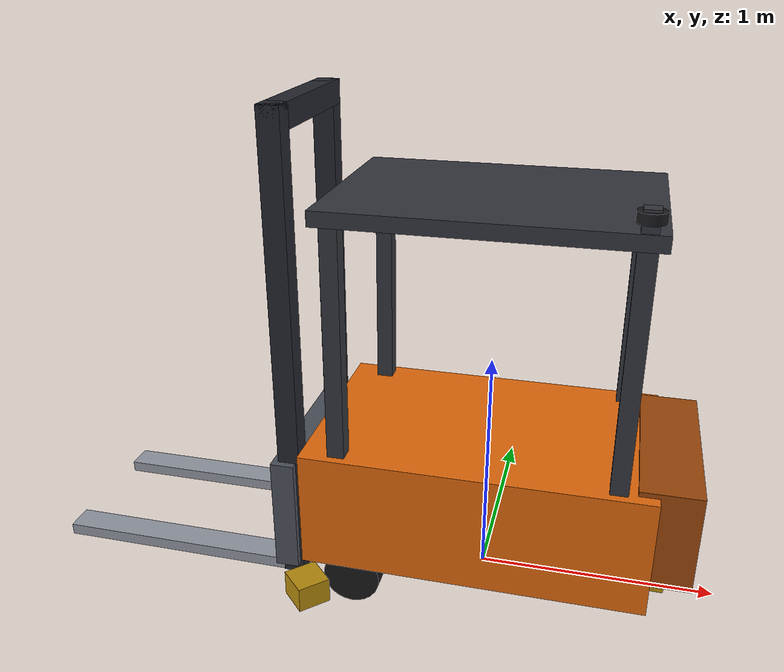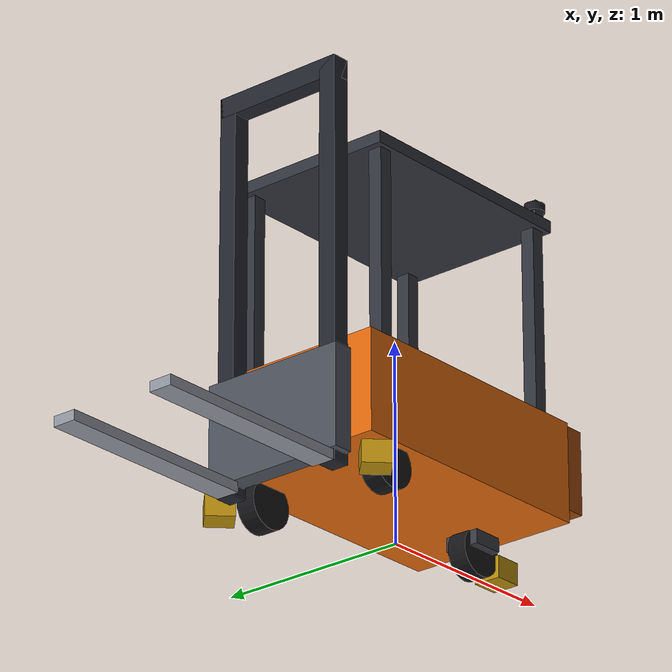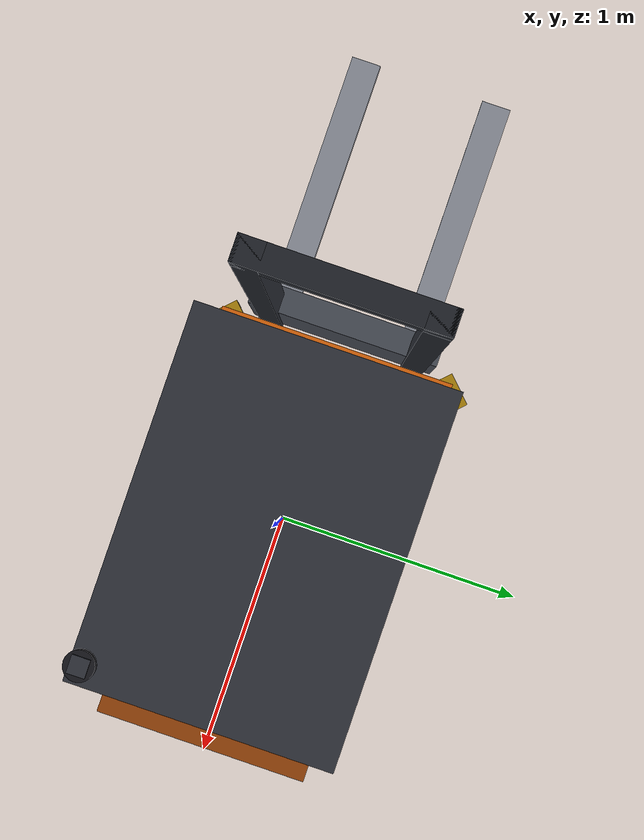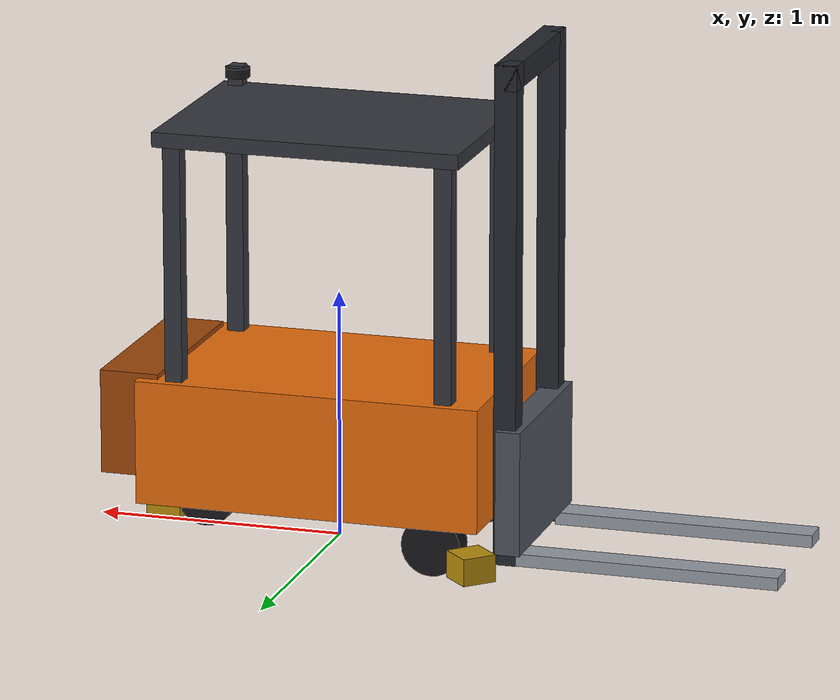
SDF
<?xml version="1.0" ?>
<sdf version="1.8">
  <model name="Forklift">
    <static>false</static>
    <self_collide>false</self_collide>

    <!-- ========================= Chassis ========================= -->
    <link name="base_link">
      <inertial>
        <pose>0.10 0 0.55 0 0 0</pose>
        <mass>900.0</mass>
        <inertia>
          <ixx>277.5</ixx><ixy>0</ixy><ixz>0</ixz>
          <iyy>363.75</iyy><iyz>0</iyz><izz>207.75</izz>
        </inertia>
      </inertial>

      <collision name="chassis_collision">
        <pose>0 0 0.45 0 0 0</pose>
        <geometry><box><size>1.40 0.90 0.50</size></box></geometry>
        <surface>
          <friction><ode><mu>0.6</mu><mu2>0.6</mu2></ode></friction>
        </surface>
      </collision>
      <visual name="chassis_visual">
        <pose>0 0 0.45 0 0 0</pose>
        <geometry><box><size>1.40 0.90 0.50</size></box></geometry>
        <material>
          <ambient>0.90 0.42 0.05 1</ambient>
          <diffuse>0.90 0.42 0.05 1</diffuse>
        </material>
      </visual>

      <!-- Counterweight, over the drive wheel and opposite the load. -->
      <collision name="counterweight_collision">
        <pose>0.74 0 0.51 0 0 0</pose>
        <geometry><box><size>0.24 0.80 0.42</size></box></geometry>
      </collision>
      <visual name="counterweight_visual">
        <pose>0.74 0 0.51 0 0 0</pose>
        <geometry><box><size>0.24 0.80 0.42</size></box></geometry>
        <material>
          <ambient>0.62 0.28 0.04 1</ambient>
          <diffuse>0.62 0.28 0.04 1</diffuse>
        </material>
      </visual>

      <!-- Overhead guard: four posts and a roof plate, visual only. -->
      <visual name="guard_post_fl">
        <pose>0.55 0.38 1.175 0 0 0</pose>
        <geometry><box><size>0.07 0.07 0.95</size></box></geometry>
        <material><ambient>0.20 0.21 0.24 1</ambient><diffuse>0.20 0.21 0.24 1</diffuse></material>
      </visual>
      <visual name="guard_post_fr">
        <pose>0.55 -0.38 1.175 0 0 0</pose>
        <geometry><box><size>0.07 0.07 0.95</size></box></geometry>
        <material><ambient>0.20 0.21 0.24 1</ambient><diffuse>0.20 0.21 0.24 1</diffuse></material>
      </visual>
      <visual name="guard_post_rl">
        <pose>-0.55 0.38 1.175 0 0 0</pose>
        <geometry><box><size>0.07 0.07 0.95</size></box></geometry>
        <material><ambient>0.20 0.21 0.24 1</ambient><diffuse>0.20 0.21 0.24 1</diffuse></material>
      </visual>
      <visual name="guard_post_rr">
        <pose>-0.55 -0.38 1.175 0 0 0</pose>
        <geometry><box><size>0.07 0.07 0.95</size></box></geometry>
        <material><ambient>0.20 0.21 0.24 1</ambient><diffuse>0.20 0.21 0.24 1</diffuse></material>
      </visual>
      <visual name="guard_roof">
        <pose>0 0 1.68 0 0 0</pose>
        <geometry><box><size>1.24 0.88 0.06</size></box></geometry>
        <material><ambient>0.20 0.21 0.24 1</ambient><diffuse>0.20 0.21 0.24 1</diffuse></material>
      </visual>

    </link>

    <!-- ======================== Sensing ========================= -->

    <link name="safety_scanner_back_link">
      <pose>0.72 0 0.15 0 0 0</pose>
      <inertial>
        <mass>1.4</mass>
        <inertia>
          <ixx>0.004</ixx><ixy>0</ixy><ixz>0</ixz>
          <iyy>0.004</iyy><iyz>0</iyz><izz>0.004</izz>
        </inertia>
      </inertial>
      <!-- Housing top face sits 20 mm BELOW the scan plane, so the scanner
           cannot see its own mounting. Visual only. -->
      <visual name="housing">
        <pose>0 0 -0.075 0 0 0</pose>
        <geometry><box><size>0.14 0.14 0.11</size></box></geometry>
        <material><ambient>0.72 0.55 0.05 1</ambient><diffuse>0.72 0.55 0.05 1</diffuse></material>
      </visual>
      <sensor name="safety_scanner_back" type="gpu_lidar">
        <pose>0 0 0 0 0 0</pose>
        <gz_frame_id>safety_scanner_back_link</gz_frame_id>
        <always_on>1</always_on>
        <update_rate>10</update_rate>
        <visualize>true</visualize>
        <topic>/forklift/gz/safety_scanner_back/measurement</topic>
        <lidar>
          <scan>
            <horizontal>
              <samples>275</samples>
              <resolution>1</resolution>
              <min_angle>-2.3998277</min_angle>
              <max_angle>2.3998277</max_angle>
            </horizontal>
            <vertical>
              <samples>1</samples>
              <resolution>1</resolution>
              <min_angle>0.0</min_angle>
              <max_angle>0.0</max_angle>
            </vertical>
          </scan>
          <range>
            <min>0.10</min>
            <max>8.0</max>
            <resolution>0.01</resolution>
          </range>
        </lidar>
      </sensor>
    </link>

    <link name="safety_scanner_left_link">
      <pose>-0.68 -0.46 0.15 0 0 -2.3561945</pose>
      <inertial>
        <mass>1.4</mass>
        <inertia>
          <ixx>0.004</ixx><ixy>0</ixy><ixz>0</ixz>
          <iyy>0.004</iyy><iyz>0</iyz><izz>0.004</izz>
        </inertia>
      </inertial>
      <!-- Housing top face sits 20 mm BELOW the scan plane, so the scanner
           cannot see its own mounting. Visual only. -->
      <visual name="housing">
        <pose>0 0 -0.075 0 0 0</pose>
        <geometry><box><size>0.14 0.14 0.11</size></box></geometry>
        <material><ambient>0.72 0.55 0.05 1</ambient><diffuse>0.72 0.55 0.05 1</diffuse></material>
      </visual>
      <sensor name="safety_scanner_left" type="gpu_lidar">
        <pose>0 0 0 0 0 0</pose>
        <gz_frame_id>safety_scanner_left_link</gz_frame_id>
        <always_on>1</always_on>
        <update_rate>10</update_rate>
        <visualize>true</visualize>
        <topic>/forklift/gz/safety_scanner_left/measurement</topic>
        <lidar>
          <scan>
            <horizontal>
              <samples>275</samples>
              <resolution>1</resolution>
              <min_angle>-2.3998277</min_angle>
              <max_angle>2.3998277</max_angle>
            </horizontal>
            <vertical>
              <samples>1</samples>
              <resolution>1</resolution>
              <min_angle>0.0</min_angle>
              <max_angle>0.0</max_angle>
            </vertical>
          </scan>
          <range>
            <min>0.10</min>
            <max>8.0</max>
            <resolution>0.01</resolution>
          </range>
        </lidar>
      </sensor>
    </link>

    <link name="safety_scanner_right_link">
      <pose>-0.68 0.46 0.15 0 0 2.3561945</pose>
      <inertial>
        <mass>1.4</mass>
        <inertia>
          <ixx>0.004</ixx><ixy>0</ixy><ixz>0</ixz>
          <iyy>0.004</iyy><iyz>0</iyz><izz>0.004</izz>
        </inertia>
      </inertial>
      <!-- Housing top face sits 20 mm BELOW the scan plane, so the scanner
           cannot see its own mounting. Visual only. -->
      <visual name="housing">
        <pose>0 0 -0.075 0 0 0</pose>
        <geometry><box><size>0.14 0.14 0.11</size></box></geometry>
        <material><ambient>0.72 0.55 0.05 1</ambient><diffuse>0.72 0.55 0.05 1</diffuse></material>
      </visual>
      <sensor name="safety_scanner_right" type="gpu_lidar">
        <pose>0 0 0 0 0 0</pose>
        <gz_frame_id>safety_scanner_right_link</gz_frame_id>
        <always_on>1</always_on>
        <update_rate>10</update_rate>
        <visualize>true</visualize>
        <topic>/forklift/gz/safety_scanner_right/measurement</topic>
        <lidar>
          <scan>
            <horizontal>
              <samples>275</samples>
              <resolution>1</resolution>
              <min_angle>-2.3998277</min_angle>
              <max_angle>2.3998277</max_angle>
            </horizontal>
            <vertical>
              <samples>1</samples>
              <resolution>1</resolution>
              <min_angle>0.0</min_angle>
              <max_angle>0.0</max_angle>
            </vertical>
          </scan>
          <range>
            <min>0.10</min>
            <max>8.0</max>
            <resolution>0.01</resolution>
          </range>
        </lidar>
      </sensor>
    </link>

    <link name="nav_lidar_link">
      <pose>0.55 -0.40 1.80 0 0 0</pose>
      <inertial>
        <mass>1.0</mass>
        <inertia>
          <ixx>0.002</ixx><ixy>0</ixy><ixz>0</ixz>
          <iyy>0.002</iyy><iyz>0</iyz><izz>0.002</izz>
        </inertia>
      </inertial>
      <!-- Post and head both finish BELOW the scan plane, as the three
           safety scanner housings do, so no sensor renders its own
           mounting. -->
      <visual name="post">
        <pose>0 0 -0.065 0 0 0</pose>
        <geometry><box><size>0.06 0.06 0.11</size></box></geometry>
        <material><ambient>0.20 0.21 0.24 1</ambient><diffuse>0.20 0.21 0.24 1</diffuse></material>
      </visual>
      <visual name="head">
        <pose>0 0 -0.040 0 0 0</pose>
        <geometry><cylinder><radius>0.05</radius><length>0.04</length></cylinder></geometry>
        <material><ambient>0.10 0.10 0.12 1</ambient><diffuse>0.10 0.10 0.12 1</diffuse></material>
      </visual>
      <sensor name="nav_lidar" type="gpu_lidar">
        <pose>0 0 0 0 0 0</pose>
        <gz_frame_id>nav_lidar_link</gz_frame_id>
        <always_on>1</always_on>
        <update_rate>10</update_rate>
        <visualize>true</visualize>
        <topic>/forklift/gz/scan_nav</topic>
        <lidar>
          <scan>
            <horizontal>
              <samples>360</samples>
              <resolution>1</resolution>
              <min_angle>-3.1415927</min_angle>
              <max_angle>3.1415927</max_angle>
            </horizontal>
            <vertical>
              <samples>1</samples>
              <resolution>1</resolution>
              <min_angle>0.0</min_angle>
              <max_angle>0.0</max_angle>
            </vertical>
          </scan>
          <range>
            <min>0.10</min>
            <max>8.0</max>
            <resolution>0.01</resolution>
          </range>
        </lidar>
      </sensor>
    </link>

    <!-- =========================== IMU =========================== -->
    <link name="imu_link">
      <pose>-0.50 0 0.25 0 0 0</pose>
      <inertial>
        <mass>0.05</mass>
        <inertia>
          <ixx>1e-5</ixx><ixy>0</ixy><ixz>0</ixz>
          <iyy>1e-5</iyy><iyz>0</iyz><izz>1e-5</izz>
        </inertia>
      </inertial>
      <sensor name="imu" type="imu">
        <pose>0 0 0 0 0 0</pose>
        <gz_frame_id>imu_link</gz_frame_id>
        <always_on>1</always_on>
        <update_rate>100</update_rate>
        <topic>/forklift/gz/imu</topic>
        <imu>
          <enable_orientation>false</enable_orientation>
          <angular_velocity>
            <x>
              <noise type="gaussian">
                <mean>0.0</mean>
                <stddev>0.001745</stddev>
                <bias_mean>0.002618</bias_mean>
                <bias_stddev>0.0</bias_stddev>
              </noise>
            </x>
            <y>
              <noise type="gaussian">
                <mean>0.0</mean>
                <stddev>0.001745</stddev>
                <bias_mean>0.002618</bias_mean>
                <bias_stddev>0.0</bias_stddev>
              </noise>
            </y>
            <z>
              <noise type="gaussian">
                <mean>0.0</mean>
                <stddev>0.001745</stddev>
                <bias_mean>0.002618</bias_mean>
                <bias_stddev>0.0</bias_stddev>
              </noise>
            </z>
          </angular_velocity>
          <linear_acceleration>
            <x>
              <noise type="gaussian">
                <mean>0.0</mean>
                <stddev>0.01076</stddev>
                <bias_mean>0.01961</bias_mean>
                <bias_stddev>0.0</bias_stddev>
              </noise>
            </x>
            <y>
              <noise type="gaussian">
                <mean>0.0</mean>
                <stddev>0.01076</stddev>
                <bias_mean>0.01961</bias_mean>
                <bias_stddev>0.0</bias_stddev>
              </noise>
            </y>
            <z>
              <noise type="gaussian">
                <mean>0.0</mean>
                <stddev>0.01278</stddev>
                <bias_mean>0.01961</bias_mean>
                <bias_stddev>0.0</bias_stddev>
              </noise>
            </z>
          </linear_acceleration>
        </imu>
      </sensor>
    </link>

    <!-- ========================== Mast ========================== -->
    <!-- Fixed structure. The carriage slides on it, see mast_joint. -->
    <link name="mast">
      <inertial>
        <pose>-0.78 0 1.05 0 0 0</pose>
        <mass>120.0</mass>
        <inertia>
          <ixx>45.63</ixx><ixy>0</ixy><ixz>0</ixz>
          <iyy>40.40</iyy><iyz>0</iyz><izz>6.03</izz>
        </inertia>
      </inertial>
      <collision name="mast_collision">
        <pose>-0.78 0 1.05 0 0 0</pose>
        <geometry><box><size>0.10 0.72 2.00</size></box></geometry>
      </collision>
      <visual name="mast_rail_left">
        <pose>-0.78 0.30 1.05 0 0 0</pose>
        <geometry><box><size>0.09 0.09 2.00</size></box></geometry>
        <material><ambient>0.14 0.15 0.18 1</ambient><diffuse>0.14 0.15 0.18 1</diffuse></material>
      </visual>
      <visual name="mast_rail_right">
        <pose>-0.78 -0.30 1.05 0 0 0</pose>
        <geometry><box><size>0.09 0.09 2.00</size></box></geometry>
        <material><ambient>0.14 0.15 0.18 1</ambient><diffuse>0.14 0.15 0.18 1</diffuse></material>
      </visual>
      <visual name="mast_crossmember">
        <pose>-0.78 0 2.00 0 0 0</pose>
        <geometry><box><size>0.09 0.69 0.10</size></box></geometry>
        <material><ambient>0.14 0.15 0.18 1</ambient><diffuse>0.14 0.15 0.18 1</diffuse></material>
      </visual>
    </link>

    <!-- ==================== Steer and drive ===================== -->
    <!--
      Tricycle front assembly. The steer axis passes through the wheel
      centre, so there is no castor trail to model and the steer angle is
      the wheel heading exactly.
    -->
    <link name="steer_link">
      <pose>0.55 0 0.24 0 0 0</pose>
      <inertial>
        <mass>18.0</mass>
        <inertia>
          <ixx>0.0768</ixx><ixy>0</ixy><ixz>0</ixz>
          <iyy>0.0768</iyy><iyz>0</iyz><izz>0.0768</izz>
        </inertia>
      </inertial>
      <visual name="steer_yoke_visual">
        <geometry><box><size>0.16 0.18 0.22</size></box></geometry>
        <material><ambient>0.22 0.23 0.26 1</ambient><diffuse>0.22 0.23 0.26 1</diffuse></material>
      </visual>
    </link>

    <link name="drive_wheel">
      <pose>0.55 0 0.12 0 0 0</pose>
      <inertial>
        <mass>12.0</mass>
        <inertia>
          <ixx>0.0532</ixx><ixy>0</ixy><ixz>0</ixz>
          <iyy>0.0864</iyy><iyz>0</iyz><izz>0.0532</izz>
        </inertia>
      </inertial>
      <collision name="collision">
        <pose>0 0 0 1.5707963 0 0</pose>
        <geometry><cylinder><radius>0.12</radius><length>0.10</length></cylinder></geometry>
        <surface>
          <friction><ode><mu>1.0</mu><mu2>0.9</mu2></ode></friction>
          <contact><ode><kp>1e6</kp><kd>100.0</kd></ode></contact>
        </surface>
      </collision>
      <visual name="visual">
        <pose>0 0 0 1.5707963 0 0</pose>
        <geometry><cylinder><radius>0.12</radius><length>0.10</length></cylinder></geometry>
        <material><ambient>0.09 0.09 0.10 1</ambient><diffuse>0.09 0.09 0.10 1</diffuse></material>
      </visual>
    </link>

    <!-- ======================= Rear wheels ====================== -->
    <!-- Passive. No controller is attached to either joint. -->
    <link name="rear_wheel_left">
      <pose>-0.50 0.36 0.12 0 0 0</pose>
      <inertial>
        <mass>10.0</mass>
        <inertia>
          <ixx>0.0443</ixx><ixy>0</ixy><ixz>0</ixz>
          <iyy>0.0720</iyy><iyz>0</iyz><izz>0.0443</izz>
        </inertia>
      </inertial>
      <collision name="collision">
        <pose>0 0 0 1.5707963 0 0</pose>
        <geometry><cylinder><radius>0.12</radius><length>0.10</length></cylinder></geometry>
        <surface>
          <friction><ode><mu>0.9</mu><mu2>0.4</mu2></ode></friction>
          <contact><ode><kp>1e6</kp><kd>100.0</kd></ode></contact>
        </surface>
      </collision>
      <visual name="visual">
        <pose>0 0 0 1.5707963 0 0</pose>
        <geometry><cylinder><radius>0.12</radius><length>0.10</length></cylinder></geometry>
        <material><ambient>0.09 0.09 0.10 1</ambient><diffuse>0.09 0.09 0.10 1</diffuse></material>
      </visual>
    </link>

    <link name="rear_wheel_right">
      <pose>-0.50 -0.36 0.12 0 0 0</pose>
      <inertial>
        <mass>10.0</mass>
        <inertia>
          <ixx>0.0443</ixx><ixy>0</ixy><ixz>0</ixz>
          <iyy>0.0720</iyy><iyz>0</iyz><izz>0.0443</izz>
        </inertia>
      </inertial>
      <collision name="collision">
        <pose>0 0 0 1.5707963 0 0</pose>
        <geometry><cylinder><radius>0.12</radius><length>0.10</length></cylinder></geometry>
        <surface>
          <friction><ode><mu>0.9</mu><mu2>0.4</mu2></ode></friction>
          <contact><ode><kp>1e6</kp><kd>100.0</kd></ode></contact>
        </surface>
      </collision>
      <visual name="visual">
        <pose>0 0 0 1.5707963 0 0</pose>
        <geometry><cylinder><radius>0.12</radius><length>0.10</length></cylinder></geometry>
        <material><ambient>0.09 0.09 0.10 1</ambient><diffuse>0.09 0.09 0.10 1</diffuse></material>
      </visual>
    </link>

    <!-- ==================== Carriage and forks =================== -->
    <!-- Link poses below are the carriage at travel zero, fully lowered. -->
    <link name="carriage">
      <pose>-0.80 0 0.35 0 0 0</pose>
      <inertial>
        <mass>40.0</mass>
        <inertia>
          <ixx>2.708</ixx><ixy>0</ixy><ixz>0</ixz>
          <iyy>0.867</iyy><iyz>0</iyz><izz>1.908</izz>
        </inertia>
      </inertial>
      <collision name="collision">
        <geometry><box><size>0.10 0.75 0.50</size></box></geometry>
      </collision>
      <visual name="visual">
        <geometry><box><size>0.10 0.75 0.50</size></box></geometry>
        <material><ambient>0.30 0.32 0.36 1</ambient><diffuse>0.30 0.32 0.36 1</diffuse></material>
      </visual>
    </link>

    <link name="fork_left">
      <pose>-1.35 0.28 0.075 0 0 0</pose>
      <inertial>
        <mass>25.0</mass>
        <inertia>
          <ixx>0.0352</ixx><ixy>0</ixy><ixz>0</ixz>
          <iyy>2.302</iyy><iyz>0</iyz><izz>2.327</izz>
        </inertia>
      </inertial>
      <collision name="collision">
        <geometry><box><size>1.05 0.12 0.05</size></box></geometry>
        <surface>
          <friction><ode><mu>0.9</mu><mu2>0.9</mu2></ode></friction>
        </surface>
      </collision>
      <visual name="visual">
        <geometry><box><size>1.05 0.12 0.05</size></box></geometry>
        <material><ambient>0.58 0.60 0.64 1</ambient><diffuse>0.58 0.60 0.64 1</diffuse></material>
      </visual>
    </link>

    <link name="fork_right">
      <pose>-1.35 -0.28 0.075 0 0 0</pose>
      <inertial>
        <mass>25.0</mass>
        <inertia>
          <ixx>0.0352</ixx><ixy>0</ixy><ixz>0</ixz>
          <iyy>2.302</iyy><iyz>0</iyz><izz>2.327</izz>
        </inertia>
      </inertial>
      <collision name="collision">
        <geometry><box><size>1.05 0.12 0.05</size></box></geometry>
        <surface>
          <friction><ode><mu>0.9</mu><mu2>0.9</mu2></ode></friction>
        </surface>
      </collision>
      <visual name="visual">
        <geometry><box><size>1.05 0.12 0.05</size></box></geometry>
        <material><ambient>0.58 0.60 0.64 1</ambient><diffuse>0.58 0.60 0.64 1</diffuse></material>
      </visual>
    </link>

    <!-- ========================== Joints ========================= -->

    <joint name="mast_anchor" type="fixed">
      <parent>base_link</parent>
      <child>mast</child>
    </joint>

    <!-- Sensor mounts. Fixed, so each scanner's frame is a rigid offset
         of base_link and the transform a consumer needs is a constant. -->
    <joint name="safety_scanner_back_mount" type="fixed">
      <parent>base_link</parent>
      <child>safety_scanner_back_link</child>
    </joint>

    <joint name="safety_scanner_left_mount" type="fixed">
      <parent>base_link</parent>
      <child>safety_scanner_left_link</child>
    </joint>

    <joint name="safety_scanner_right_mount" type="fixed">
      <parent>base_link</parent>
      <child>safety_scanner_right_link</child>
    </joint>

    <joint name="nav_lidar_mount" type="fixed">
      <parent>base_link</parent>
      <child>nav_lidar_link</child>
    </joint>

    <joint name="imu_mount" type="fixed">
      <parent>base_link</parent>
      <child>imu_link</child>
    </joint>

    <!-- Steer axis, vertical. Limit is the mechanical stop of the
         assembly, not a control decision. -->
    <joint name="steer_joint" type="revolute">
      <parent>base_link</parent>
      <child>steer_link</child>
      <axis>
        <xyz>0 0 1</xyz>
        <limit>
          <lower>-1.31</lower>
          <upper>1.31</upper>
          <effort>800</effort>
          <velocity>2.0</velocity>
        </limit>
        <dynamics><damping>80.0</damping><friction>0.5</friction></dynamics>
      </axis>
    </joint>

    <!-- Traction axis. Spin is unlimited; the bounds below are the
         continuous rotation idiom, not a travel limit. -->
    <joint name="drive_wheel_joint" type="revolute">
      <parent>steer_link</parent>
      <child>drive_wheel</child>
      <axis>
        <xyz>0 1 0</xyz>
        <limit>
          <lower>-1e16</lower>
          <upper>1e16</upper>
          <effort>500</effort>
          <velocity>40.0</velocity>
        </limit>
        <dynamics><damping>0.05</damping><friction>0.0</friction></dynamics>
      </axis>
    </joint>

    <joint name="rear_wheel_left_joint" type="revolute">
      <parent>base_link</parent>
      <child>rear_wheel_left</child>
      <axis>
        <xyz>0 1 0</xyz>
        <limit>
          <lower>-1e16</lower>
          <upper>1e16</upper>
          <effort>200</effort>
          <velocity>40.0</velocity>
        </limit>
        <dynamics><damping>0.05</damping><friction>0.0</friction></dynamics>
      </axis>
    </joint>

    <joint name="rear_wheel_right_joint" type="revolute">
      <parent>base_link</parent>
      <child>rear_wheel_right</child>
      <axis>
        <xyz>0 1 0</xyz>
        <limit>
          <lower>-1e16</lower>
          <upper>1e16</upper>
          <effort>200</effort>
          <velocity>40.0</velocity>
        </limit>
        <dynamics><damping>0.05</damping><friction>0.0</friction></dynamics>
      </axis>
    </joint>

    <joint name="mast_joint" type="prismatic">
      <parent>mast</parent>
      <child>carriage</child>
      <axis>
        <xyz>0 0 1</xyz>
        <limit>
          <lower>0.0</lower>
          <upper>1.6</upper>
          <effort>12000</effort>
          <velocity>0.15</velocity>
        </limit>
        <dynamics><damping>8000.0</damping><friction>50.0</friction></dynamics>
      </axis>
    </joint>

    <joint name="fork_left_joint" type="fixed">
      <parent>carriage</parent>
      <child>fork_left</child>
    </joint>

    <joint name="fork_right_joint" type="fixed">
      <parent>carriage</parent>
      <child>fork_right</child>
    </joint>

    <!-- ====================== gz systems ========================= -->

    <plugin filename="gz-sim-joint-position-controller-system"
            name="gz::sim::systems::JointPositionController">
      <joint_name>steer_joint</joint_name>
      <topic>/forklift/gz/actuator/steer_cmd</topic>
      <p_gain>60000.0</p_gain>
      <i_gain>1500.0</i_gain>
      <d_gain>30.0</d_gain>
      <i_max>800.0</i_max>
      <i_min>-800.0</i_min>
      <cmd_max>4000.0</cmd_max>
      <cmd_min>-4000.0</cmd_min>
    </plugin>

    <!-- Traction command [rad/s] at the wheel. Raw velocity, no ramp. -->
    <plugin filename="gz-sim-joint-controller-system"
            name="gz::sim::systems::JointController">
      <joint_name>drive_wheel_joint</joint_name>
      <topic>/forklift/gz/actuator/traction_cmd</topic>
      <initial_velocity>0.0</initial_velocity>
    </plugin>

    <plugin filename="gz-sim-joint-position-controller-system"
            name="gz::sim::systems::JointPositionController">
      <joint_name>mast_joint</joint_name>
      <topic>/forklift/gz/actuator/fork_cmd</topic>
      <p_gain>60000.0</p_gain>
      <i_gain>2500.0</i_gain>
      <d_gain>9000.0</d_gain>
      <i_max>200.0</i_max>
      <i_min>-1500.0</i_min>
      <cmd_max>3000.0</cmd_max>
      <cmd_min>-100.0</cmd_min>
    </plugin>

    <plugin filename="gz-sim-imu-system"
            name="gz::sim::systems::Imu">
    </plugin>

    <plugin filename="gz-sim-joint-state-publisher-system"
            name="gz::sim::systems::JointStatePublisher">
      <topic>/forklift/gz/joint_state</topic>
      <joint_name>steer_joint</joint_name>
      <joint_name>drive_wheel_joint</joint_name>
      <joint_name>mast_joint</joint_name>
    </plugin>

    <plugin filename="gz-sim-joint-state-publisher-system"
            name="gz::sim::systems::JointStatePublisher">
      <topic>/forklift/gz/drive_speed/read_a</topic>
      <joint_name>drive_wheel_joint</joint_name>
    </plugin>
    <plugin filename="gz-sim-joint-state-publisher-system"
            name="gz::sim::systems::JointStatePublisher">
      <topic>/forklift/gz/drive_speed/read_b</topic>
      <joint_name>drive_wheel_joint</joint_name>
    </plugin>

    <plugin filename="gz-sim-odometry-publisher-system"
            name="gz::sim::systems::OdometryPublisher">
      <odom_topic>/forklift/gz/odom</odom_topic>
      <tf_topic>/forklift/gz/tf_ground_truth</tf_topic>
      <odom_frame>forklift/odom</odom_frame>
      <robot_base_frame>forklift/base_link</robot_base_frame>
      <dimensions>2</dimensions>
      <odom_publish_frequency>20</odom_publish_frequency>
    </plugin>

  </model>
</sdf>
